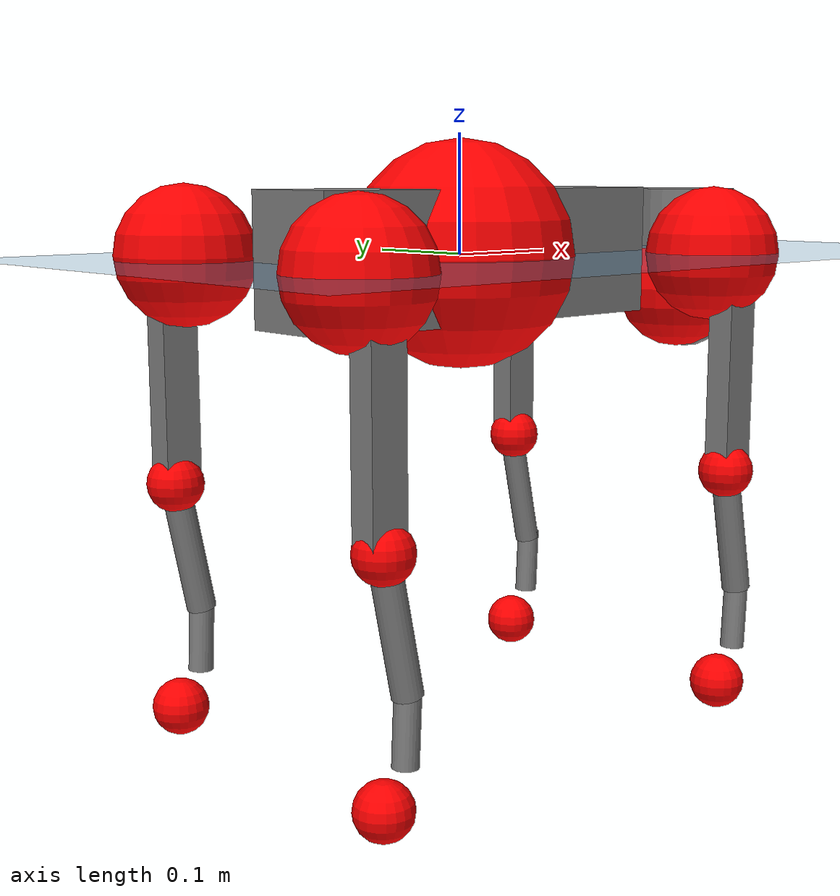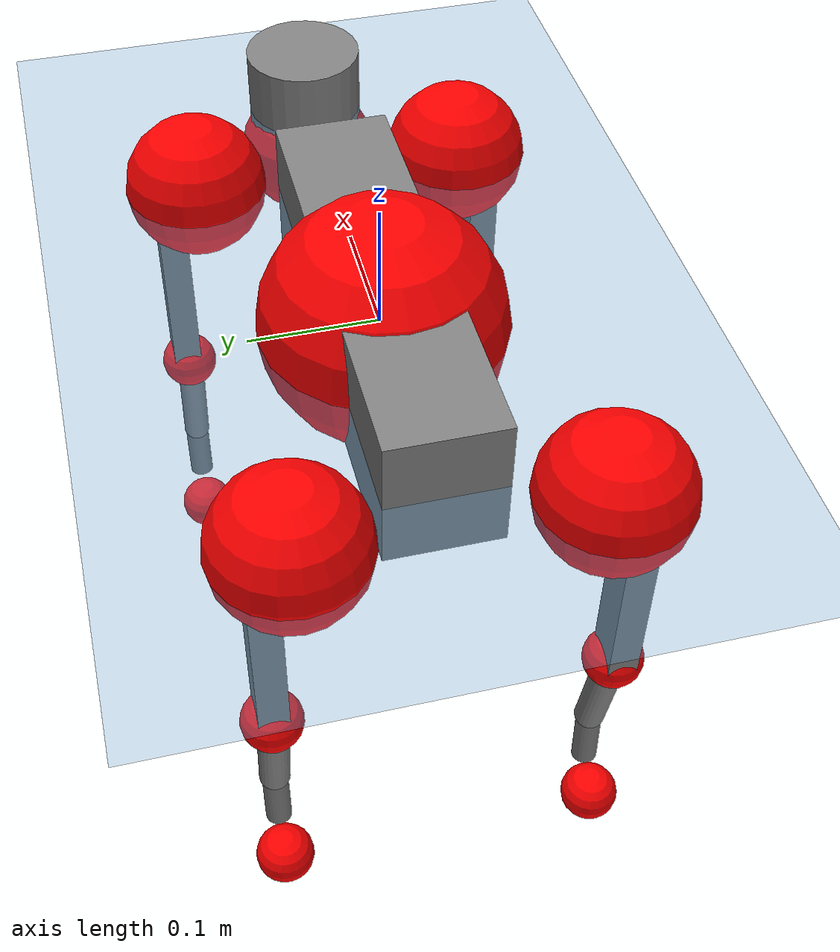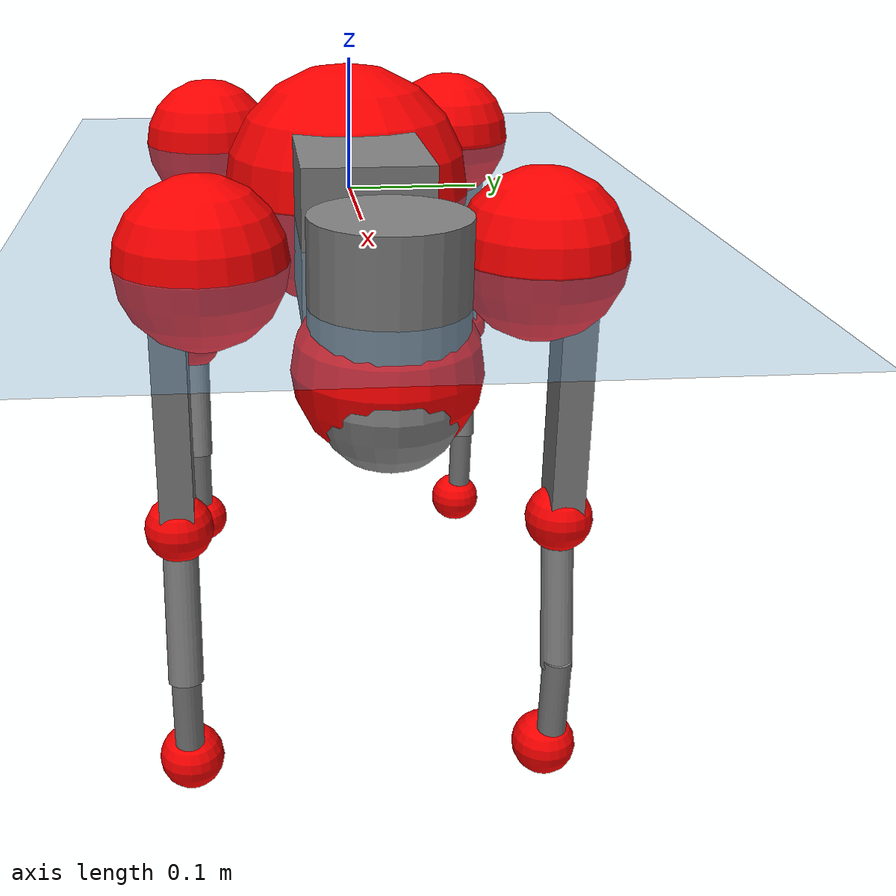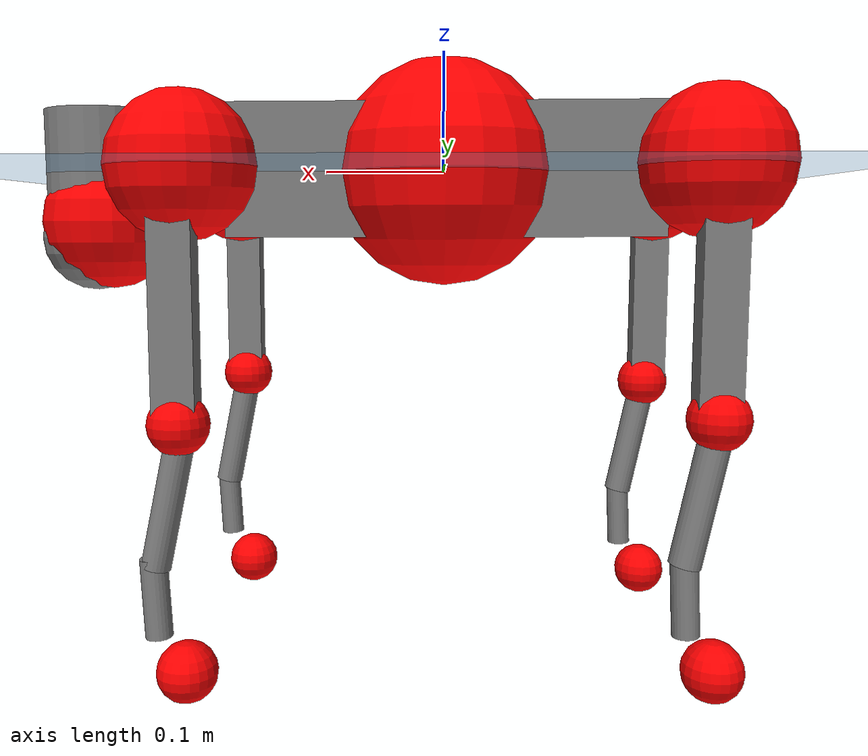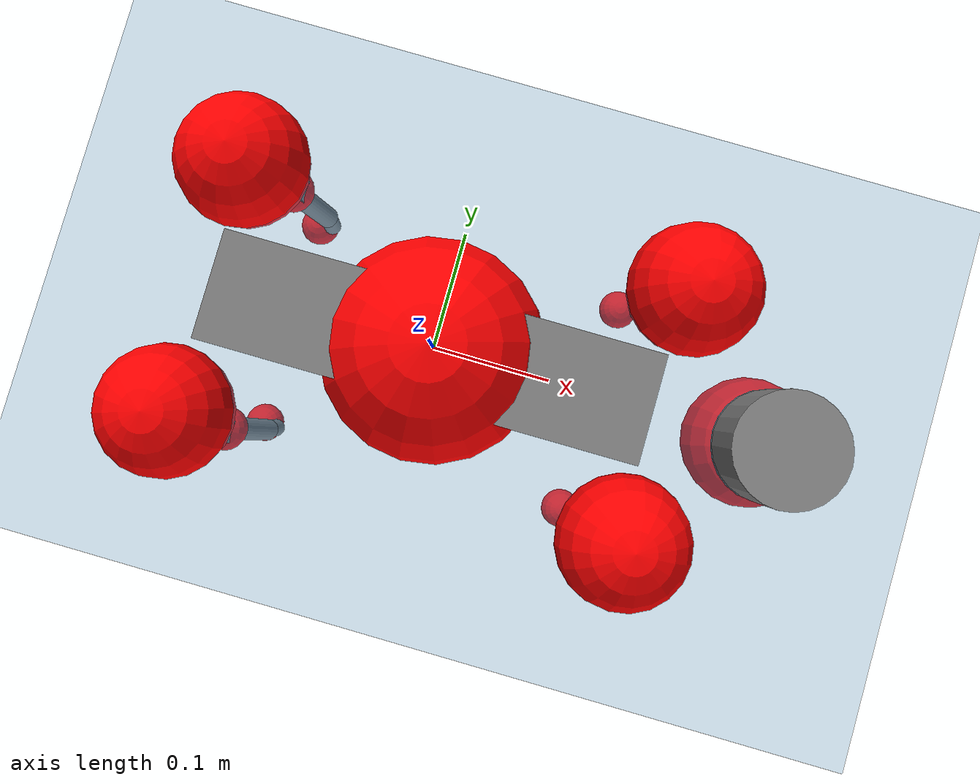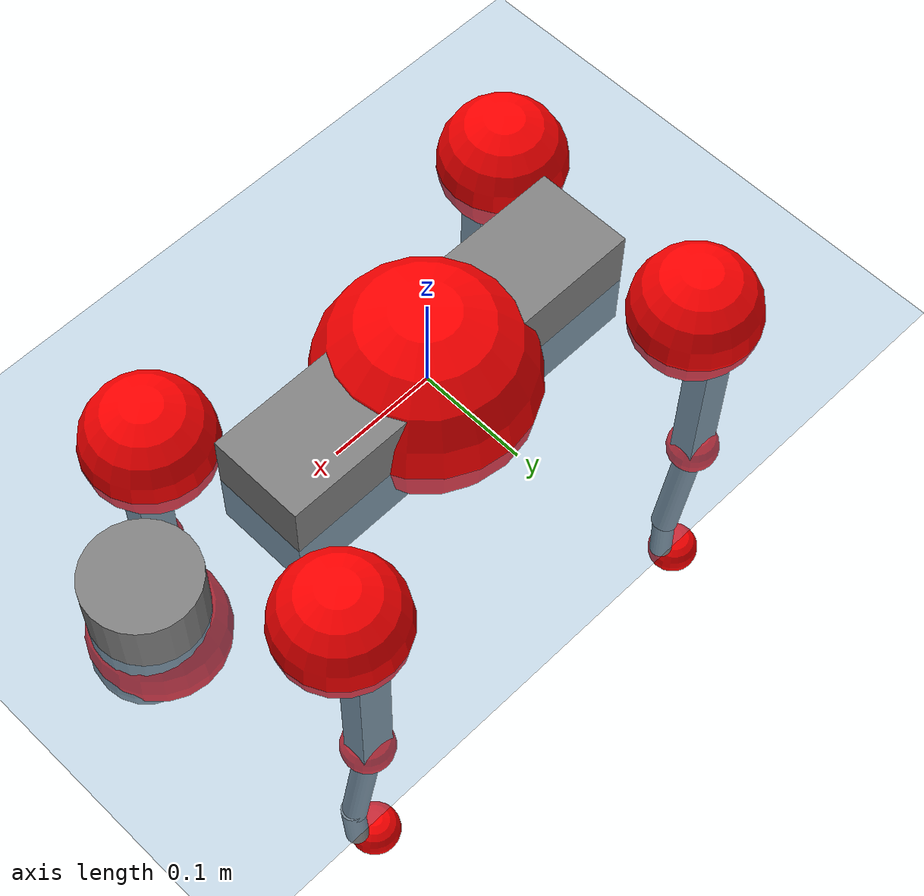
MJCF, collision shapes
<mujoco model="go2">
  <compiler angle="radian" assetdir="assets" balanceinertia="true" inertiafromgeom="false"/>

  <option timestep="0.005" density="1.2" viscosity="2e-05"/>

  <size nkey="1"/>

  <visual>
    <quality shadowsize="8192"/>
    <map shadowclip="0.5"/>
  </visual>

  <default>
    <default class="/">
      <geom contype="0" conaffinity="0" group="1" solref="-1000 -80"/>
      <site size="0.01 0.005 0.005" group="5"/>
      <general forcelimited="true" biastype="affine" gainprm="20" biasprm="0 -20 -0.5"/>
      <default class="go2">
        <joint armature="0.01" damping="0.01" frictionloss="0.2"/>
        <geom condim="1" margin="0.001"/>
        <default class="visual">
          <geom type="mesh" group="2"/>
        </default>
        <default class="collision">
          <geom group="3"/>
          <default class="foot">
            <geom size="0.022 0 0" condim="6" priority="1" friction="0.8 0.02 0.01" solimp="0.015 1 0.022"/>
          </default>
        </default>
        <default class="reward_collision_sphere">
          <geom group="5" rgba="1 0 0 1"/>
        </default>
      </default>
    </default>
  </default>

  <asset>
    <texture type="skybox" colorspace="auto" name="//unnamed_texture_0" builtin="gradient" rgb1="0.95 0.95 0.95" rgb2="0.95 0.95 0.95" width="100" height="600"/>
    <texture type="2d" colorspace="auto" name="texplane" builtin="checker" rgb1="0.345 0.575 0.748" rgb2="0.345 0.575 0.748" markrgb="1 1 1" width="512" height="512"/>
    <material name="MatPlane" class="/" texture="texplane" texuniform="true" texrepeat="2 2" specular="0.9"/>
    <material name="metal" class="/" rgba="0.9 0.95 0.95 1"/>
    <material name="black" class="/" rgba="0 0 0 1"/>
    <material name="white" class="/"/>
    <material name="gray" class="/" rgba="0.671705 0.692426 0.77427 1"/>
    <mesh name="base_0" class="/" file="base_0.obj"/>
    <mesh name="base_1" class="/" file="base_1.obj"/>
    <mesh name="base_2" class="/" file="base_2.obj"/>
    <mesh name="base_3" class="/" file="base_3.obj"/>
    <mesh name="base_4" class="/" file="base_4.obj"/>
    <mesh name="hip_0" class="/" file="hip_0.obj"/>
    <mesh name="hip_1" class="/" file="hip_1.obj"/>
    <mesh name="thigh_0" class="/" file="thigh_0.obj"/>
    <mesh name="thigh_1" class="/" file="thigh_1.obj"/>
    <mesh name="thigh_mirror_0" class="/" file="thigh_mirror_0.obj"/>
    <mesh name="thigh_mirror_1" class="/" file="thigh_mirror_1.obj"/>
    <mesh name="calf_0" class="/" file="calf_0.obj"/>
    <mesh name="calf_1" class="/" file="calf_1.obj"/>
    <mesh name="calf_mirror_0" class="/" file="calf_mirror_0.obj"/>
    <mesh name="calf_mirror_1" class="/" file="calf_mirror_1.obj"/>
    <mesh name="foot" class="/" file="foot.obj"/>
  </asset>

  <worldbody>
    <geom name="floor" class="/" size="100 100 0.125" type="plane" group="0" material="MatPlane"/>
    <light name="toplight_shadow" class="/" pos="0 0 5" dir="0.0990148 0.0990148 -0.990148" type="directional" ambient="0.04 0.04 0.04" diffuse="0.55 0.55 0.55" specular="0.12 0.12 0.12"/>
    <light name="toplight_fill" class="/" pos="0 0 5" dir="0.0990148 0.0990148 -0.990148" type="directional" castshadow="false" ambient="0.04 0.04 0.04" diffuse="0.3 0.3 0.3" specular="0.08 0.08 0.08"/>
    <body name="trunk" childclass="go2" pos="-0.000524638 -0.00231627 0.000275102" quat="0.999999 0.00056575 0.000901931 0.000482405">
      <inertial pos="0.0199729 -0.00245224 -0.00241611" quat="0.00775405 0.712897 -0.00120601 0.701225" mass="6.07394" diaginertia="0.114816 0.0682665 0.0153006"/>
      <joint name="//unnamed_joint_0" type="free" armature="0" damping="0" frictionloss="0"/>
      <geom name="//unnamed_geom_1" class="visual" material="black" mesh="base_0"/>
      <geom name="//unnamed_geom_2" class="visual" material="black" mesh="base_1"/>
      <geom name="//unnamed_geom_3" class="visual" material="black" mesh="base_2"/>
      <geom name="//unnamed_geom_4" class="visual" material="white" mesh="base_3"/>
      <geom name="//unnamed_geom_5" class="visual" material="gray" mesh="base_4"/>
      <geom name="trunk_1" class="collision" size="0.180172 0.0447796 0.0545976" type="box"/>
      <geom name="trunk_2" class="collision" size="0.0478927 0.0431034" pos="0.292757 0 0.00910414" type="cylinder"/>
      <geom name="trunk_3" class="collision" size="0.0450191" pos="0.300975 0 -0.0546249"/>
      <geom name="//unnamed_geom_9" class="reward_collision_sphere" size="0.0957853"/>
      <geom name="//unnamed_geom_10" class="reward_collision_sphere" size="0.0574712" pos="0.287621 0 -0.0409686"/>
      <site name="imu" pos="-0.022826 -8.59682e-05 0.0385247" size="0.00957853"/>
      <camera name="track" pos="0 -1.87186 0" quat="0.707107 0.707107 0 0" mode="trackcom"/>
      <camera name="ego_camera" pos="0.320492 0 0.0409686" quat="-0.5 -0.5 0.5 0.5"/>
      <body name="FL_hip" pos="0.198592 0.0446561 -2.03925e-05" quat="1 2.58543e-05 -0.000117996 0.00017327">
        <inertial pos="-0.00559636 -0.000696556 -0.000426551" quat="0.490235 0.497743 0.513403 0.498336" mass="0.592283" diaginertia="0.00100048 0.000417176 0.000295826"/>
        <joint name="FL_hip_joint" pos="0 0 0" axis="0.999939 0.00837574 0.00715705" stiffness="0.0143979" range="-1.07929 1.07089" armature="0.00941954" damping="0" frictionloss="0.188997"/>
        <geom name="//unnamed_geom_11" class="visual" material="metal" mesh="hip_0"/>
        <geom name="//unnamed_geom_12" class="visual" material="gray" mesh="hip_1"/>
        <geom name="//unnamed_geom_13" class="collision" size="0.0440613 0.0191571" pos="0 0.0748743 0" quat="0.707107 0.707107 0 0" type="cylinder"/>
        <geom name="//unnamed_geom_14" class="reward_collision_sphere" size="0.0574712" pos="0 0.065515 0"/>
        <body name="FL_thigh" pos="0.00172153 0.0906537 -0.000240354" quat="0.999999 0.000666055 -0.000995995 -0.000358333">
          <inertial pos="-0.00427976 -0.0184757 -0.0288411" quat="0.828781 0.0854473 -0.0179185 0.55272" mass="1.03536" diaginertia="0.00659274 0.00434367 0.000551588"/>
          <joint name="FL_thigh_joint" pos="0 0 0" axis="-0.0155945 0.999878 0.00109622" stiffness="0.00885598" range="-1.61651 3.43654" armature="0.0107092" damping="0" frictionloss="0.175037"/>
          <geom name="//unnamed_geom_15" class="visual" material="metal" mesh="thigh_0"/>
          <geom name="//unnamed_geom_16" class="visual" material="gray" mesh="thigh_1"/>
          <geom name="//unnamed_geom_17" class="collision" size="0.102011 0.0117337 0.0162835" pos="0 0 -0.0969591" quat="0.707107 0 0.707107 0" type="box"/>
          <body name="FL_calf" pos="-0.0007614 -0.00198219 -0.193046" quat="1 -1.05928e-05 6.19368e-06 1.99183e-05">
            <inertial pos="0.0037391 -0.00252317 -0.130909" quat="0.710162 0.001781 -0.00433788 0.704023" mass="0.206477" diaginertia="0.00166085 0.00105755 3.26267e-05"/>
            <joint name="FL_calf_joint" pos="0 0 0" axis="0.000577131 0.999922 -0.0124846" stiffness="0.0130085" range="-2.67712 -0.782874" armature="0.00871463" damping="0" frictionloss="0.190652"/>
            <geom name="//unnamed_geom_18" class="visual" material="gray" mesh="calf_0"/>
            <geom name="//unnamed_geom_19" class="visual" material="black" mesh="calf_1"/>
            <geom name="FL_calf0" class="collision" size="0.0114942 0.0574712" pos="0.00821774 0 -0.0546249" quat="0.994493 0 -0.104807 0" type="cylinder"/>
            <geom name="//unnamed_geom_21" class="collision" size="0.0105364 0.0311302" pos="0.0205443 0 -0.134741" quat="0.999688 0 0.0249974 0" type="cylinder"/>
            <geom name="//unnamed_geom_22" class="visual" pos="0 0 -0.193918" quat="1 0 0 0" material="black" mesh="foot"/>
            <geom name="FL_foot" class="foot" size="0.0168091" pos="-0.00205443 0 -0.193918"/>
            <geom name="//unnamed_geom_24" class="reward_collision_sphere" size="0.0239463"/>
            <geom name="//unnamed_geom_25" class="reward_collision_sphere" size="0.0239463" pos="-0.00205443 0 -0.193918"/>
            <site name="FL_foot" class="foot" pos="-0.00205443 0 -0.193918" size="0.00957853"/>
          </body>
        </body>
      </body>
      <body name="FR_hip" pos="0.196443 -0.044464 -0.00157242" quat="1 0.000423608 -0.000291408 0.000430229">
        <inertial pos="-0.00454841 -0.00142569 -6.06654e-05" quat="0.487296 0.505056 0.503011 0.504421" mass="0.597316" diaginertia="0.000986474 0.000428 0.000302534"/>
        <joint name="FR_hip_joint" pos="0 0 0" axis="0.99996 -0.00103616 0.00893173" range="-1.06777 1.10591" armature="0.00910474" damping="0.00489083" frictionloss="0.186914"/>
        <geom name="//unnamed_geom_26" class="visual" pos="0 2.22271e-10 9.53368e-09" quat="4.63268e-05 1 0 0" material="metal" mesh="hip_0"/>
        <geom name="//unnamed_geom_27" class="visual" pos="0 3.60329e-10 -2.35804e-08" quat="4.63268e-05 1 0 0" material="gray" mesh="hip_1"/>
        <geom name="//unnamed_geom_28" class="collision" size="0.0440613 0.0191571" pos="0 -0.0748743 0" quat="0.707107 0.707107 0 0" type="cylinder"/>
        <geom name="//unnamed_geom_29" class="reward_collision_sphere" size="0.0574712" pos="0 -0.065515 0"/>
        <body name="FR_thigh" pos="0.000648919 -0.0889353 0.000623809" quat="1 0.000104657 -9.75864e-05 -0.000109809">
          <inertial pos="-0.00209974 0.0188782 -0.0270637" quat="0.551119 -0.0200785 0.0845381 0.82989" mass="1.01013" diaginertia="0.00662923 0.00421173 0.000551837"/>
          <joint name="FR_thigh_joint" pos="0 0 0" axis="-0.00390503 -0.999992 0.000750968" stiffness="0.00995924" range="-3.49892 1.56732" armature="0.00836092" damping="0.0266679" frictionloss="0.171906"/>
          <geom name="//unnamed_geom_30" class="visual" material="metal" mesh="thigh_mirror_0"/>
          <geom name="//unnamed_geom_31" class="visual" material="gray" mesh="thigh_mirror_1"/>
          <geom name="//unnamed_geom_32" class="collision" size="0.102011 0.0117337 0.0162835" pos="0 0 -0.0969591" quat="0.707107 0 0.707107 0" type="box"/>
          <body name="FR_calf" pos="-0.000948544 0.000192085 -0.190332" quat="1 0.000206713 0.000435019 7.8985e-05">
            <inertial pos="0.00438544 0.00298916 -0.128998" quat="0.70383 -0.00178587 -0.000550734 0.710366" mass="0.218665" diaginertia="0.00174633 0.00111621 3.33855e-05"/>
            <joint name="FR_calf_joint" pos="0 0 0" axis="-0.00689983 -0.999958 -0.00600987" stiffness="0.00133886" range="0.830053 2.71028" armature="0.0100812" damping="0" frictionloss="0.189145"/>
            <geom name="//unnamed_geom_33" class="visual" material="gray" mesh="calf_mirror_0"/>
            <geom name="//unnamed_geom_34" class="visual" material="black" mesh="calf_mirror_1"/>
            <geom name="FR_calf0" class="collision" size="0.0124521 0.0574712" pos="0.0102722 0 -0.0546249" quat="0.995004 0 -0.0998334 0" type="cylinder"/>
            <geom name="//unnamed_geom_36" class="collision" size="0.0105364 0.0311302" pos="0.0205443 0 -0.134741" quat="0.999688 0 0.0249974 0" type="cylinder"/>
            <geom name="//unnamed_geom_37" class="visual" pos="0 0 -0.193918" quat="1 0 0 0" material="black" mesh="foot"/>
            <geom name="FR_foot" class="foot" size="0.0199392" pos="-0.00205443 0 -0.193918"/>
            <geom name="//unnamed_geom_39" class="reward_collision_sphere" size="0.0239463"/>
            <geom name="//unnamed_geom_40" class="reward_collision_sphere" size="0.0239463" pos="-0.00205443 0 -0.193918"/>
            <site name="FR_foot" class="foot" pos="-0.00205443 0 -0.193918" size="0.00957853"/>
          </body>
        </body>
      </body>
      <body name="RL_hip" pos="-0.198846 0.044778 0.00166599" quat="1 -4.16745e-05 -0.000225662 7.39771e-05">
        <inertial pos="0.00459931 0.00313431 0.00228479" quat="0.502331 0.497343 0.498821 0.501489" mass="0.575455" diaginertia="0.00101859 0.000418766 0.000305181"/>
        <joint name="RL_hip_joint" pos="0 0 0" axis="-0.999929 0.00527107 -0.0106685" stiffness="0.0127113" range="-0.993145 1.03845" armature="0.0100443" damping="0.0111584" frictionloss="0.217099"/>
        <geom name="//unnamed_geom_41" class="visual" pos="-1.01754e-09 0 -1.9946e-07" quat="4.63268e-05 0 1 0" material="metal" mesh="hip_0"/>
        <geom name="//unnamed_geom_42" class="visual" pos="-1.64955e-09 0 -1.76893e-07" quat="4.63268e-05 0 1 0" material="gray" mesh="hip_1"/>
        <geom name="//unnamed_geom_43" class="collision" size="0.0440613 0.0191571" pos="0 0.0748743 0" quat="0.707107 0.707107 0 0" type="cylinder"/>
        <geom name="//unnamed_geom_44" class="reward_collision_sphere" size="0.0574712" pos="0 0.065515 0"/>
        <body name="RL_thigh" pos="-0.000276353 0.0879635 0.00227758" quat="0.999999 -0.000940819 0.00100953 -0.000161736">
          <inertial pos="-0.00368332 -0.0186183 -0.0293849" quat="0.83542 0.0767635 -0.0156566 0.543999" mass="0.978361" diaginertia="0.0066499 0.00427904 0.000567447"/>
          <joint name="RL_thigh_joint" pos="0 0 0" axis="0.00855352 0.999954 0.00423381" stiffness="0.00506844" range="-0.503739 4.53277" armature="0.0106778" damping="0.023275" frictionloss="0.175159"/>
          <geom name="//unnamed_geom_45" class="visual" material="metal" mesh="thigh_0"/>
          <geom name="//unnamed_geom_46" class="visual" material="gray" mesh="thigh_1"/>
          <geom name="//unnamed_geom_47" class="collision" size="0.102011 0.0117337 0.0162835" pos="0 0 -0.0969591" quat="0.707107 0 0.707107 0" type="box"/>
          <body name="RL_calf" pos="-0.00189533 -9.10381e-05 -0.19168" quat="1 0.000257913 -0.00077385 0.000286702">
            <inertial pos="0.00695542 0.00228294 -0.127944" quat="0.710218 0.00208183 -0.00439968 0.703965" mass="0.210084" diaginertia="0.00162863 0.00100364 3.16881e-05"/>
            <joint name="RL_calf_joint" pos="0 0 0" axis="0.0110721 0.999868 0.0118724" stiffness="0.0120638" range="-2.67258 -0.828071" armature="0.0107181" damping="0.0103936" frictionloss="0.170791"/>
            <geom name="//unnamed_geom_48" class="visual" material="gray" mesh="calf_0"/>
            <geom name="//unnamed_geom_49" class="visual" material="black" mesh="calf_1"/>
            <geom name="RL_calf0" class="collision" size="0.0124521 0.0574712" pos="0.0102722 0 -0.0546249" quat="0.995004 0 -0.0998334 0" type="cylinder"/>
            <geom name="//unnamed_geom_51" class="collision" size="0.0105364 0.0311302" pos="0.0205443 0 -0.134741" quat="0.999688 0 0.0249974 0" type="cylinder"/>
            <geom name="//unnamed_geom_52" class="visual" pos="0 0 -0.193918" quat="1 0 0 0" material="black" mesh="foot"/>
            <geom name="RL_foot" class="foot" size="0.0180535" pos="-0.00205443 0 -0.193918"/>
            <geom name="//unnamed_geom_54" class="reward_collision_sphere" size="0.0239463"/>
            <geom name="//unnamed_geom_55" class="reward_collision_sphere" size="0.0239463" pos="-0.00205443 0 -0.193918"/>
            <site name="RL_foot" class="foot" pos="-0.00205443 0 -0.193918" size="0.00957853"/>
          </body>
        </body>
      </body>
      <body name="RR_hip" pos="-0.201118 -0.0447705 -0.00190225" quat="0.999999 -0.000792454 -0.000271625 -0.000648534">
        <inertial pos="0.00528187 -0.00144184 0.000288958" quat="0.49774 0.497763 0.499085 0.505372" mass="0.585392" diaginertia="0.000994016 0.000419372 0.000303146"/>
        <joint name="RR_hip_joint" pos="0 0 0" axis="-1 0.000468451 -0.000576316" stiffness="0.0107571" range="-1.02555 1.09374" armature="0.0108933" damping="0.00747946" frictionloss="0.210995"/>
        <geom name="//unnamed_geom_56" class="visual" pos="1.01437e-09 2.22271e-10 -2.08994e-07" quat="2.14617e-09 4.63268e-05 4.63268e-05 -1" material="metal" mesh="hip_0"/>
        <geom name="//unnamed_geom_57" class="visual" pos="1.65736e-09 3.60329e-10 -1.53312e-07" quat="2.14617e-09 4.63268e-05 4.63268e-05 -1" material="gray" mesh="hip_1"/>
        <geom name="//unnamed_geom_58" class="collision" size="0.0440613 0.0191571" pos="0 -0.0748743 0" quat="0.707107 0.707107 0 0" type="cylinder"/>
        <geom name="//unnamed_geom_59" class="reward_collision_sphere" size="0.0574712" pos="0 -0.065515 0"/>
        <body name="RR_thigh" pos="-0.00192311 -0.0873001 -0.00230494" quat="1 8.24244e-05 2.47013e-05 2.39057e-05">
          <inertial pos="-0.00392326 0.0183709 -0.030296" quat="0.547796 -0.0208419 0.0874857 0.831764" mass="0.996746" diaginertia="0.00679545 0.00417119 0.000528232"/>
          <joint name="RR_thigh_joint" pos="0 0 0" axis="0.00498261 -0.999987 0.00126986" stiffness="0.0112011" range="-4.53685 0.570746" armature="0.0083704" damping="0.0253305" frictionloss="0.19408"/>
          <geom name="//unnamed_geom_60" class="visual" material="metal" mesh="thigh_mirror_0"/>
          <geom name="//unnamed_geom_61" class="visual" material="gray" mesh="thigh_mirror_1"/>
          <geom name="//unnamed_geom_62" class="collision" size="0.102011 0.0117337 0.0162835" pos="0 0 -0.0969591" quat="0.707107 0 0.707107 0" type="box"/>
          <body name="RR_calf" pos="0.00334795 5.67718e-06 -0.194753" quat="1 0.000117899 -0.000397082 -8.80356e-05">
            <inertial pos="0.00465324 -0.00026988 -0.128334" quat="0.703672 -0.00459845 0.00158715 0.710508" mass="0.217804" diaginertia="0.00169079 0.00106531 3.34338e-05"/>
            <joint name="RR_calf_joint" pos="0 0 0" axis="-0.00624178 -0.999969 0.00484118" range="0.891239 2.74984" armature="0.00982959" damping="0.0160585" frictionloss="0.20744"/>
            <geom name="//unnamed_geom_63" class="visual" material="gray" mesh="calf_mirror_0"/>
            <geom name="//unnamed_geom_64" class="visual" material="black" mesh="calf_mirror_1"/>
            <geom name="RR_calf0" class="collision" size="0.0124521 0.0574712" pos="0.0102722 0 -0.0546249" quat="0.995004 0 -0.0998334 0" type="cylinder"/>
            <geom name="//unnamed_geom_66" class="collision" size="0.0105364 0.0311302" pos="0.0205443 0 -0.134741" quat="0.999688 0 0.0249974 0" type="cylinder"/>
            <geom name="//unnamed_geom_67" class="visual" pos="0 0 -0.193918" quat="1 0 0 0" material="black" mesh="foot"/>
            <geom name="RR_foot" class="foot" size="0.0235454" pos="-0.00205443 0 -0.193918"/>
            <geom name="//unnamed_geom_69" class="reward_collision_sphere" size="0.0239463"/>
            <geom name="//unnamed_geom_70" class="reward_collision_sphere" size="0.0239463" pos="-0.00205443 0 -0.193918"/>
            <site name="RR_foot" class="foot" pos="-0.00205443 0 -0.193918" size="0.00957853"/>
          </body>
        </body>
      </body>
    </body>
  </worldbody>

  <contact>
    <pair class="/" geom1="floor" geom2="FL_foot" name="//unnamed_contact_0"/>
    <pair class="/" geom1="floor" geom2="FR_foot" name="//unnamed_contact_1"/>
    <pair class="/" geom1="floor" geom2="RL_foot" name="//unnamed_contact_2"/>
    <pair class="/" geom1="floor" geom2="RR_foot" name="//unnamed_contact_3"/>
  </contact>

  <actuator>
    <general name="FL_hip" class="/" joint="FL_hip_joint" forcerange="-23.5935 23.5935" gainprm="19.136" biasprm="0 -19.136 -0.480097"/>
    <general name="FL_thigh" class="/" joint="FL_thigh_joint" forcerange="-22.7376 22.7376" gainprm="19.136" biasprm="0 -19.136 -0.480097"/>
    <general name="FL_calf" class="/" joint="FL_calf_joint" forcerange="-43.6406 43.6406" gainprm="19.136" biasprm="0 -19.136 -0.480097"/>
    <general name="FR_hip" class="/" joint="FR_hip_joint" forcerange="-21.4728 21.4728" gainprm="19.136" biasprm="0 -19.136 -0.480097"/>
    <general name="FR_thigh" class="/" joint="FR_thigh_joint" forcerange="-22.3571 22.3571" gainprm="19.136" biasprm="0 -19.136 -0.480097"/>
    <general name="FR_calf" class="/" joint="FR_calf_joint" forcerange="-39.0112 39.0112" gainprm="19.136" biasprm="0 -19.136 -0.480097"/>
    <general name="RL_hip" class="/" joint="RL_hip_joint" forcerange="-22.7551 22.7551" gainprm="19.136" biasprm="0 -19.136 -0.480097"/>
    <general name="RL_thigh" class="/" joint="RL_thigh_joint" forcerange="-22.2702 22.2702" gainprm="19.136" biasprm="0 -19.136 -0.480097"/>
    <general name="RL_calf" class="/" joint="RL_calf_joint" forcerange="-42.9855 42.9855" gainprm="19.136" biasprm="0 -19.136 -0.480097"/>
    <general name="RR_hip" class="/" joint="RR_hip_joint" forcerange="-21.6543 21.6543" gainprm="19.136" biasprm="0 -19.136 -0.480097"/>
    <general name="RR_thigh" class="/" joint="RR_thigh_joint" forcerange="-22.9135 22.9135" gainprm="19.136" biasprm="0 -19.136 -0.480097"/>
    <general name="RR_calf" class="/" joint="RR_calf_joint" forcerange="-48.0023 48.0023" gainprm="19.136" biasprm="0 -19.136 -0.480097"/>
  </actuator>

  <sensor>
    <gyro site="imu" name="imu_angular_velocity"/>
    <velocimeter site="imu" name="imu_linear_velocity"/>
    <framelinvel objtype="site" objname="FL_foot" name="FL_foot_global_linear_velocity"/>
    <framelinvel objtype="site" objname="FR_foot" name="FR_foot_global_linear_velocity"/>
    <framelinvel objtype="site" objname="RL_foot" name="RL_foot_global_linear_velocity"/>
    <framelinvel objtype="site" objname="RR_foot" name="RR_foot_global_linear_velocity"/>
  </sensor>

  <keyframe>
    <key name="home" qpos="0 0 0.325 1 0 0 0 0.1 0.8 -1.5 -0.1 -0.8 1.5 -0.1 0.8 -1.5 0.1 -0.8 1.5"/>
  </keyframe>
</mujoco>
